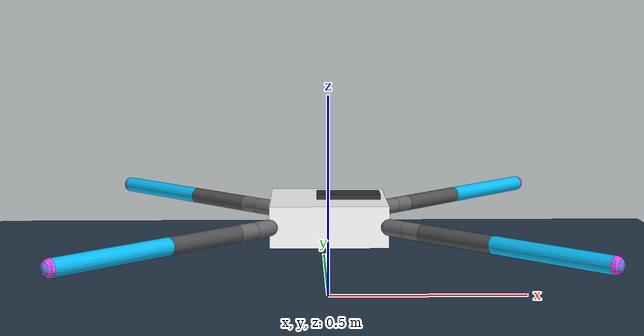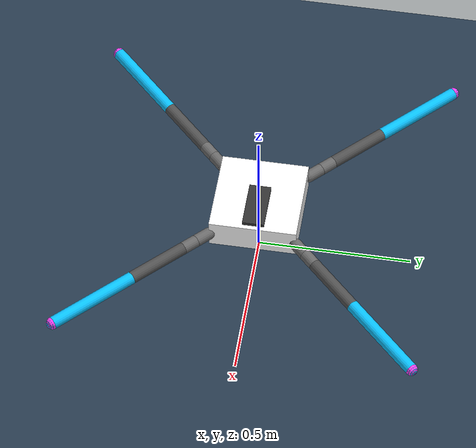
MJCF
<mujoco model="robot">
  <compiler angle="radian" autolimits="true"/>
  <option timestep="0.004" integrator="implicitfast" solver="Newton" iterations="100" tolerance="1e-10"/>
  <default>
    <joint type="hinge" damping="0.4" armature="0.008" frictionloss="0.02"/>
    <position kp="300" kv="8" forcerange="-26 26"/>
    <default class="link"><geom type="capsule" size="0.02" density="400"/></default>
    <default class="foot"><geom type="sphere" size="0.02" density="1000" material="foot"/></default>
    <default class="base"><geom type="box" density="300" material="base"/></default>
    <default class="j0"><joint axis="0 0 1" range="-1.57079637 1.57079637"/><position ctrlrange="-1.57079637 1.57079637"/></default>
    <default class="j1"><joint axis="1 0 0" range="-3.14159274 3.14159274"/><position ctrlrange="-3.14159274 3.14159274"/></default>
    <default class="j2"><joint axis="0 1 0" range="-2.61799383 2.61799383"/><position ctrlrange="-2.61799383 2.61799383"/></default>
    <default class="j3"><joint axis="0 1 0" range="-2.61799383 2.61799383"/><position ctrlrange="-2.61799383 2.61799383"/></default>
  </default>
  <asset>
    <material name="base"  rgba="1 1 1 1"/>
    <material name="coxa"  rgba="0.42 0.42 0.42 1"/>
    <material name="femur" rgba="0.32 0.32 0.32 1"/>
    <material name="tibia" rgba="0.039216 0.760784 1 1"/>
    <material name="foot"  rgba="1 0.258824 0.976471 1"/>
    <texture type="skybox" builtin="gradient" rgb1="0.3 0.5 0.7" rgb2="0 0 0" width="512" height="512"/>
    <texture name="grid" type="2d" builtin="checker" rgb1="0.2 0.3 0.4" rgb2="0.1 0.15 0.2" width="512" height="512"/>
    <material name="grid" texture="grid" texrepeat="10 10" reflectance="0.2"/>
  </asset>
  <worldbody>
    <body name="base" pos="0 0 0.2">
      <freejoint name="root"/>
      <geom name="body_nose" type="box" pos="0.049497477 -7.4505806e-09 0.0560000007" size="0.0777817495 0.0353553444 0.006" rgba="0.2 0.2 0.2 1" mass="0" contype="0" conaffinity="0"/>
      <geom class="base" name="base" pos="0 -7.4505806e-09 0" size="0.141421363 0.141421378 0.0500000007"/>
<body name="leg0_0" pos="0.141421363 0.141421363 0" quat="0.923879504 0 0 0.382683456">
  <joint class="j0" name="leg0_j0"/>
  <geom class="link" fromto="0 0 0 0.0500000007 0 0" material="coxa"/>
<body name="leg0_1" pos="0.0500000007 0 0" quat="1 0 0 0">
  <joint class="j1" name="leg0_j1"/>
  <geom class="link" fromto="0 0 0 0.0500000007 0 0" material="coxa"/>
<body name="leg0_2" pos="0.0500000007 0 0" quat="1 0 0 0">
  <joint class="j2" name="leg0_j2"/>
  <geom class="link" fromto="0 0 0 0.200000003 0 0" material="femur"/>
<body name="leg0_3" pos="0.200000003 0 0" quat="1 0 0 0">
  <joint class="j3" name="leg0_j3"/>
  <geom class="link" fromto="0 0 0 0.300000012 0 0" material="tibia"/>
<body name="foot0" pos="0.300000012 0 0" quat="1 0 0 0">
  <geom class="foot" name="foot0"/>
</body>
</body></body></body></body>
<body name="leg1_0" pos="-0.141421363 0.141421363 0" quat="0.382683307 0 0 0.923879564">
  <joint class="j0" name="leg1_j0"/>
  <geom class="link" fromto="0 0 0 0.0500000007 0 0" material="coxa"/>
<body name="leg1_1" pos="0.0500000007 0 0" quat="1 0 0 0">
  <joint class="j1" name="leg1_j1"/>
  <geom class="link" fromto="0 0 0 0.0500000007 0 0" material="coxa"/>
<body name="leg1_2" pos="0.0500000007 0 0" quat="1 0 0 0">
  <joint class="j2" name="leg1_j2"/>
  <geom class="link" fromto="0 0 0 0.200000003 0 0" material="femur"/>
<body name="leg1_3" pos="0.200000003 0 0" quat="1 0 0 0">
  <joint class="j3" name="leg1_j3"/>
  <geom class="link" fromto="0 0 0 0.300000012 0 0" material="tibia"/>
<body name="foot1" pos="0.300000012 0 0" quat="1 0 0 0">
  <geom class="foot" name="foot1"/>
</body>
</body></body></body></body>
<body name="leg2_0" pos="-0.141421363 -0.141421348 0" quat="0.382683307 0 0 -0.923879564">
  <joint class="j0" name="leg2_j0"/>
  <geom class="link" fromto="0 0 0 0.0500000007 0 0" material="coxa"/>
<body name="leg2_1" pos="0.0500000007 0 0" quat="1 0 0 0">
  <joint class="j1" name="leg2_j1"/>
  <geom class="link" fromto="0 0 0 0.0500000007 0 0" material="coxa"/>
<body name="leg2_2" pos="0.0500000007 0 0" quat="1 0 0 0">
  <joint class="j2" name="leg2_j2"/>
  <geom class="link" fromto="0 0 0 0.200000003 0 0" material="femur"/>
<body name="leg2_3" pos="0.200000003 0 0" quat="1 0 0 0">
  <joint class="j3" name="leg2_j3"/>
  <geom class="link" fromto="0 0 0 0.300000012 0 0" material="tibia"/>
<body name="foot2" pos="0.300000012 0 0" quat="1 0 0 0">
  <geom class="foot" name="foot2"/>
</body>
</body></body></body></body>
<body name="leg3_0" pos="0.141421333 -0.141421378 0" quat="0.923879445 0 0 -0.382683694">
  <joint class="j0" name="leg3_j0"/>
  <geom class="link" fromto="0 0 0 0.0500000007 0 0" material="coxa"/>
<body name="leg3_1" pos="0.0500000007 0 0" quat="1 0 0 0">
  <joint class="j1" name="leg3_j1"/>
  <geom class="link" fromto="0 0 0 0.0500000007 0 0" material="coxa"/>
<body name="leg3_2" pos="0.0500000007 0 0" quat="1 0 0 0">
  <joint class="j2" name="leg3_j2"/>
  <geom class="link" fromto="0 0 0 0.200000003 0 0" material="femur"/>
<body name="leg3_3" pos="0.200000003 0 0" quat="1 0 0 0">
  <joint class="j3" name="leg3_j3"/>
  <geom class="link" fromto="0 0 0 0.300000012 0 0" material="tibia"/>
<body name="foot3" pos="0.300000012 0 0" quat="1 0 0 0">
  <geom class="foot" name="foot3"/>
</body>
</body></body></body></body>
    </body>
    <geom name="ground" type="plane" size="0 0 0.05" material="grid"/>
    <light pos="0 0 2" dir="0 0 -1" diffuse="0.8 0.8 0.8"/>
    <body name="target" mocap="true" pos="0 0 0.2">
      <geom type="box" pos="0 -7.4505806e-09 0" size="0.141421363 0.141421378 0.0500000007" rgba="1.0 1.0 1.0 1.0" contype="0" conaffinity="0"/>
      <geom type="box" pos="0.049497477 -7.4505806e-09 0.0560000007" size="0.0777817495 0.0353553444 0.006" rgba="0.2 0.2 0.2 1.0" contype="0" conaffinity="0"/>
    </body>
  </worldbody>
  <actuator>
    <position class="j0" name="leg0_j0" joint="leg0_j0"/>
    <position class="j1" name="leg0_j1" joint="leg0_j1"/>
    <position class="j2" name="leg0_j2" joint="leg0_j2"/>
    <position class="j3" name="leg0_j3" joint="leg0_j3"/>
    <position class="j0" name="leg1_j0" joint="leg1_j0"/>
    <position class="j1" name="leg1_j1" joint="leg1_j1"/>
    <position class="j2" name="leg1_j2" joint="leg1_j2"/>
    <position class="j3" name="leg1_j3" joint="leg1_j3"/>
    <position class="j0" name="leg2_j0" joint="leg2_j0"/>
    <position class="j1" name="leg2_j1" joint="leg2_j1"/>
    <position class="j2" name="leg2_j2" joint="leg2_j2"/>
    <position class="j3" name="leg2_j3" joint="leg2_j3"/>
    <position class="j0" name="leg3_j0" joint="leg3_j0"/>
    <position class="j1" name="leg3_j1" joint="leg3_j1"/>
    <position class="j2" name="leg3_j2" joint="leg3_j2"/>
    <position class="j3" name="leg3_j3" joint="leg3_j3"/>
  </actuator>
  <equality>
    <connect name="pin_foot0" body1="foot0" anchor="0 0 0" solref="0.008 1" solimp="0.9 0.999 0.001 0.5 2" active="false"/>
    <connect name="pin_foot1" body1="foot1" anchor="0 0 0" solref="0.008 1" solimp="0.9 0.999 0.001 0.5 2" active="false"/>
    <connect name="pin_foot2" body1="foot2" anchor="0 0 0" solref="0.008 1" solimp="0.9 0.999 0.001 0.5 2" active="false"/>
    <connect name="pin_foot3" body1="foot3" anchor="0 0 0" solref="0.008 1" solimp="0.9 0.999 0.001 0.5 2" active="false"/>
  </equality>
</mujoco>
